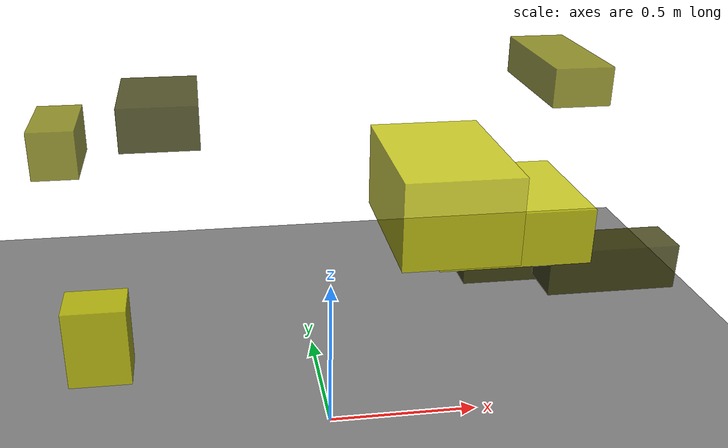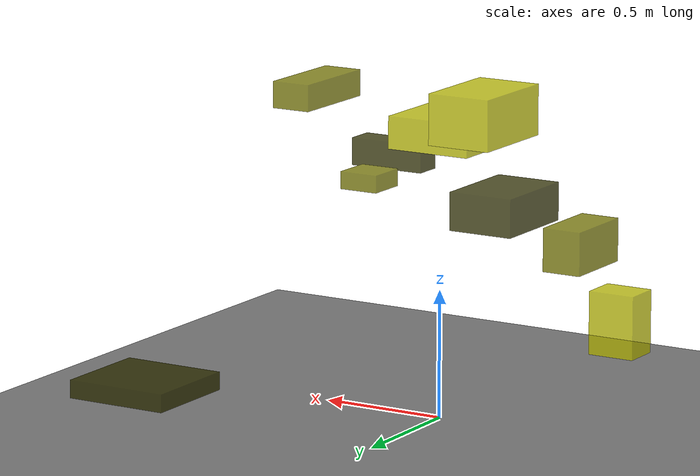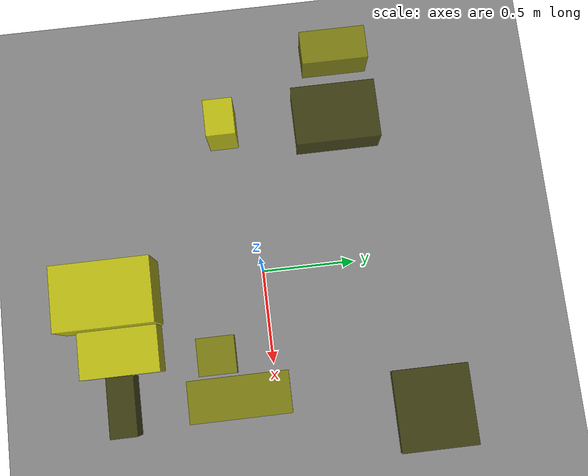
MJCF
<?xml version="1.0"?>
<mujoco model="obstacle_scene">
  <compiler angle="radian" coordinate="local"/>
  <option timestep="0.001" gravity="0 0 -9.81"/>

  <asset>
    <material name="obstacle_mat" rgba="0.8 0.8 0.0 0.8"/>
    <material name="ground_mat" rgba="0.5 0.5 0.5 1"/>
  </asset>

  <worldbody>
    <!-- Ground plane -->
    <geom name="ground" type="plane" size="3 3 0.1" material="ground_mat"/>

    <!-- Obstacles -->
    <body name="obstacle_0" pos="-0.503943 0.399208 0.961991">
      <geom name="obs_0" type="box" size="0.125706 0.178322 0.071400" rgba="0.2 0.2 0.0 0.8"/>
    </body>
    <body name="obstacle_1" pos="-0.841478 0.437041 0.866361">
      <geom name="obs_1" type="box" size="0.074428 0.144266 0.079938" rgba="0.5 0.5 0.0 0.8"/>
    </body>
    <body name="obstacle_2" pos="0.312593 -0.589654 0.984585">
      <geom name="obs_2" type="box" size="0.176377 0.160784 0.065458" rgba="0.8 0.8 0.0 0.8"/>
    </body>
    <body name="obstacle_3" pos="0.817452 0.790336 0.195909">
      <geom name="obs_3" type="box" size="0.205123 0.195914 0.034939" rgba="0.2 0.2 0.0 0.8"/>
    </body>
    <body name="obstacle_4" pos="0.619072 -0.112561 1.198531">
      <geom name="obs_4" type="box" size="0.078608 0.190217 0.051709" rgba="0.5 0.5 0.0 0.8"/>
    </body>
    <body name="obstacle_5" pos="0.167411 -0.614639 1.057813">
      <geom name="obs_5" type="box" size="0.132114 0.199176 0.102191" rgba="0.8 0.8 0.0 0.8"/>
    </body>
    <body name="obstacle_6" pos="0.582301 -0.624125 0.858214">
      <geom name="obs_6" type="box" size="0.157654 0.057346 0.055172" rgba="0.2 0.2 0.0 0.8"/>
    </body>
    <body name="obstacle_7" pos="0.448429 -0.218583 0.843514">
      <geom name="obs_7" type="box" size="0.080036 0.081213 0.034216" rgba="0.5 0.5 0.0 0.8"/>
    </body>
    <body name="obstacle_8" pos="-0.707417 -0.121928 0.444086">
      <geom name="obs_8" type="box" size="0.092042 0.072391 0.121351" rgba="0.8 0.8 0.0 0.8"/>
    </body>
  </worldbody>
</mujoco>
